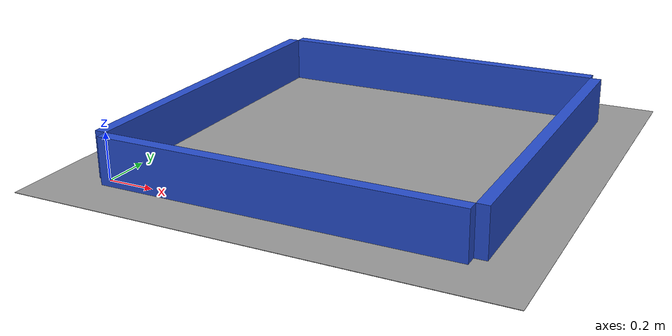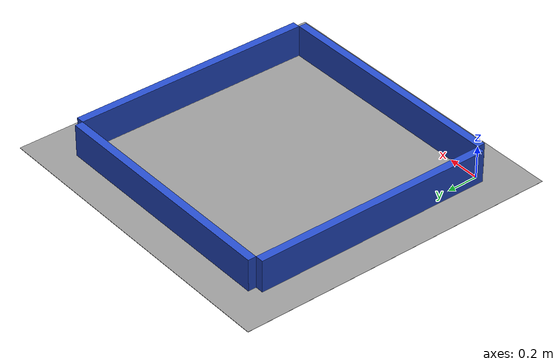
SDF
<?xml version="1.0" ?>
<sdf version="1.6">
  <world name="square_arena_with_walls">
    <physics type="ode">
      <real_time_update_rate>1000</real_time_update_rate>
    </physics>
    <scene>
      <ambient>0.4 0.4 0.4 1</ambient>
      <background>0.7 0.7 0.7 1</background>
    </scene>
    <light name="sun" type="directional">
      <cast_shadows>true</cast_shadows>
      <pose>0 0 10 0 -0 0</pose>
      <diffuse>1 1 1 1</diffuse>
      <specular>0.1 0.1 0.1 1</specular>
      <attenuation>
        <range>1000</range>
        <constant>0.9</constant>
        <linear>0.01</linear>
        <quadratic>0.001</quadratic>
      </attenuation>
      <direction>-0.5 0.5 -1</direction>
    </light>
    <model name="arena">
      <static>true</static>
      <!-- Ground Plane -->
      <link name="ground_plane">
      <pose>0.75 0.75 0 0 0 0</pose>
        <collision name="collision">
          <geometry>
            <plane>
              <normal>0 0 1</normal>
              <size>2 2</size>
            </plane>
          </geometry>
          <surface>
            <friction>
              <ode>
                <mu>1</mu>
                <mu2>1</mu2>
              </ode>
            </friction>
            <contact>
              <ode/>
            </contact>
          </surface>
        </collision>
        <visual name="visual">
          <geometry>
            <plane>
              <normal>0 0 1</normal>
              <size>2 2</size>
            </plane>
          </geometry>
          <material>
            <script>
              <uri>file://media/materials/scripts/gazebo.material</uri>
              <name>Gazebo/Gray</name>
            </script>
          </material>
        </visual>
      </link>
      <!-- Walls -->
      <!-- North wall (top wall) -->
      <link name="wall_north">
        <pose>0.75 1.525 0.1 0 0 0</pose>  <!-- Moved outward by half of wall thickness (0.025) -->
        <collision name="collision">
          <geometry>
            <box>
              <size>1.5 0.05 0.2</size>
            </box>
          </geometry>
        </collision>
        <visual name="visual">
          <geometry>
            <box>
              <size>1.5 0.05 0.2</size>
            </box>
          </geometry>
          <material>
            <script>
              <uri>file://media/materials/scripts/gazebo.material</uri>
              <name>Gazebo/Blue</name>
            </script>
          </material>
        </visual>
      </link>
      <!-- South wall (bottom wall) -->
      <link name="wall_south">
        <pose>0.75 -0.025 0.1 0 0 0</pose>  <!-- Moved outward by half of wall thickness (0.025) -->
        <collision name="collision">
          <geometry>
            <box>
              <size>1.5 0.05 0.2</size>
            </box>
          </geometry>
        </collision>
        <visual name="visual">
          <geometry>
            <box>
              <size>1.5 0.05 0.2</size>
            </box>
          </geometry>
          <material>
            <script>
              <uri>file://media/materials/scripts/gazebo.material</uri>
              <name>Gazebo/Blue</name>
            </script>
          </material>
        </visual>
      </link>
      <!-- East wall (right wall) -->
      <link name="wall_east">
        <pose>1.525 0.75 0.1 0 0 0</pose>  <!-- Moved outward by half of wall thickness (0.025) -->
        <collision name="collision">
          <geometry>
            <box>
              <size>0.05 1.5 0.2</size>
            </box>
          </geometry>
        </collision>
        <visual name="visual">
          <geometry>
            <box>
              <size>0.05 1.5 0.2</size>
            </box>
          </geometry>
          <material>
            <script>
              <uri>file://media/materials/scripts/gazebo.material</uri>
              <name>Gazebo/Blue</name>
            </script>
          </material>
        </visual>
      </link>
      <!-- West wall (left wall) -->
      <link name="wall_west">
        <pose>-0.025 0.75 0.1 0 0 0</pose>  <!-- Moved outward by half of wall thickness (0.025) -->
        <collision name="collision">
          <geometry>
            <box>
              <size>0.05 1.5 0.2</size>
            </box>
          </geometry>
        </collision>
        <visual name="visual">
          <geometry>
            <box>
              <size>0.05 1.5 0.2</size>
            </box>
          </geometry>
          <material>
            <script>
              <uri>file://media/materials/scripts/gazebo.material</uri>
              <name>Gazebo/Blue</name>
            </script>
          </material>
        </visual>
      </link>
    </model>
  </world>
</sdf>
